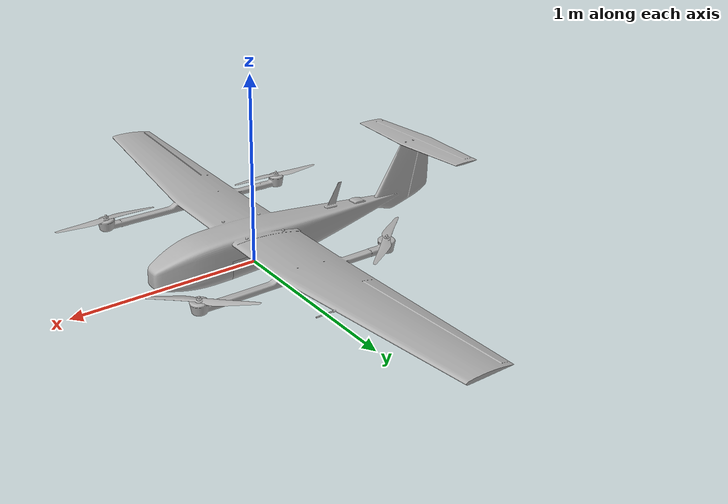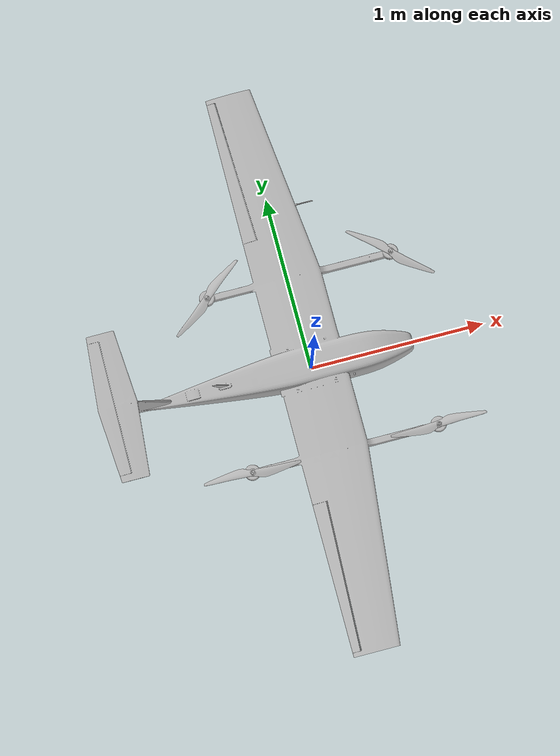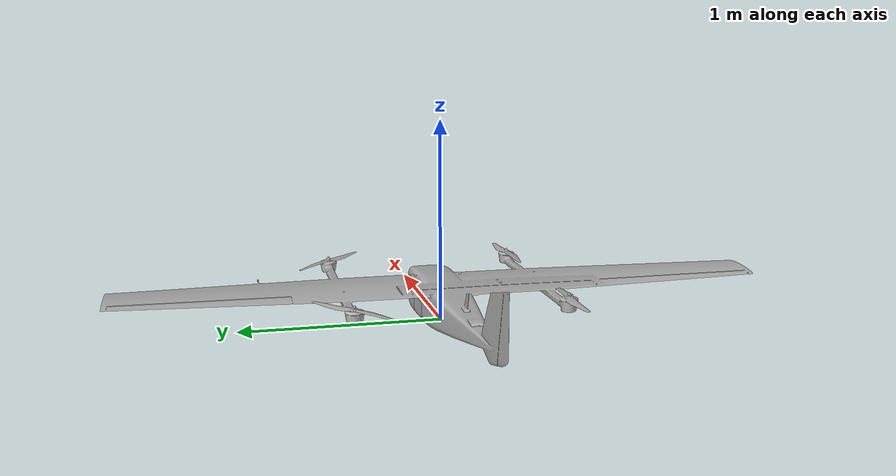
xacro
<?xml version="1.0" ?>
<robot name="vtol_dron" xmlns:xacro="http://www.ros.org/wiki/xacro">

  <!-- Include materials and simulation files -->
  <xacro:include filename="$(find vtol_dron_description)/urdf/materials.xacro" />
  <xacro:include filename="$(find vtol_dron_description)/urdf/vtol_dron.trans" />
  <xacro:include filename="$(find vtol_dron_description)/urdf/vtol_dron.gazebo" />

  <!-- ==================== BASE LINK ==================== -->
  <link name="base_link">
    <inertial>
      <!-- almost weightless -->
      <origin xyz="0 0 0" rpy="0 0 0"/>
      <mass value="0.0001"/>
      <inertia ixx="1e-6" iyy="1e-6" izz="1e-6" ixy="0" iyz="0" ixz="0"/>
    </inertial>
    <visual>
      <origin xyz="0 0 0" rpy="0 0 0"/>
      <geometry>
        <mesh filename="file://$(find vtol_dron_description)/meshes/base_link.stl" scale="0.001 0.001 0.001"/>
      </geometry>
      <material name="silver"/>
    </visual>
    <collision>
      <origin xyz="0 0 0" rpy="0 0 0"/>
      <geometry>
        <mesh filename="file://$(find vtol_dron_description)/meshes/base_link.stl" scale="0.001 0.001 0.001"/>
      </geometry>
    </collision>
  </link>

  <!-- ==================== MECHANISM ==================== -->
  <link name="mechanism__1_1">
    <inertial>
      <!-- negligible mass -->
      <origin xyz="0 0 0" rpy="0 0 0"/>
      <mass value="0.0001"/>
      <inertia ixx="1e-6" iyy="1e-6" izz="1e-6" ixy="0" iyz="0" ixz="0"/>
    </inertial>
    <visual>
      <origin xyz="0.014058 0.00682 -0.047465" rpy="0 0 0"/>
      <geometry>
        <mesh filename="file://$(find vtol_dron_description)/meshes/mechanism__1_1.stl" scale="0.001 0.001 0.001"/>
      </geometry>
      <material name="silver"/>
    </visual>
    <collision>
      <origin xyz="0.014058 0.00682 -0.047465" rpy="0 0 0"/>
      <geometry>
        <mesh filename="file://$(find vtol_dron_description)/meshes/mechanism__1_1.stl" scale="0.001 0.001 0.001"/>
      </geometry>
    </collision>
  </link>

  <!-- ==================== PROPELLER LINKS ==================== -->
  <!-- Each propeller has realistic mass (0.75 kg) and simple inertia -->

  <link name="rear_left_propeller_1">
    <inertial>
      <origin xyz="0 0 0" rpy="0 0 0"/>
      <mass value="0.75"/>
      <inertia ixx="0.001" iyy="0.001" izz="0.002" ixy="0" iyz="0" ixz="0"/>
    </inertial>
    <visual>
      <origin xyz="0.467618 -0.492756 -0.202098" rpy="0 0 0"/>
      <geometry>
        <mesh filename="file://$(find vtol_dron_description)/meshes/rear_left_propeller_1.stl" scale="0.001 0.001 0.001"/>
      </geometry>
      <material name="silver"/>
    </visual>
    <collision>
      <origin xyz="0.467618 -0.492756 -0.202098" rpy="0 0 0"/>
      <geometry>
        <mesh filename="file://$(find vtol_dron_description)/meshes/rear_left_propeller_1.stl" scale="0.001 0.001 0.001"/>
      </geometry>
    </collision>
  </link>

  <link name="rear_right_propeller_1">
    <inertial>
      <origin xyz="0 0 0" rpy="0 0 0"/>
      <mass value="0.75"/>
      <inertia ixx="0.001" iyy="0.001" izz="0.002" ixy="0" iyz="0" ixz="0"/>
    </inertial>
    <visual>
      <origin xyz="0.467618 0.507244 -0.202098" rpy="0 0 0"/>
      <geometry>
        <mesh filename="file://$(find vtol_dron_description)/meshes/rear_right_propeller_1.stl" scale="0.001 0.001 0.001"/>
      </geometry>
      <material name="silver"/>
    </visual>
    <collision>
      <origin xyz="0.467618 0.507244 -0.202098" rpy="0 0 0"/>
      <geometry>
        <mesh filename="file://$(find vtol_dron_description)/meshes/rear_right_propeller_1.stl" scale="0.001 0.001 0.001"/>
      </geometry>
    </collision>
  </link>

  <link name="front_left_propeller_1">
    <inertial>
      <origin xyz="0 0 0" rpy="0 0 0"/>
      <mass value="0.75"/>
      <inertia ixx="0.001" iyy="0.001" izz="0.002" ixy="0" iyz="0" ixz="0"/>
    </inertial>
    <visual>
      <origin xyz="-0.582382 -0.492756 -0.202098" rpy="0 0 0"/>
      <geometry>
        <mesh filename="file://$(find vtol_dron_description)/meshes/front_left_propeller_1.stl" scale="0.001 0.001 0.001"/>
      </geometry>
      <material name="silver"/>
    </visual>
    <collision>
      <origin xyz="-0.582382 -0.492756 -0.202098" rpy="0 0 0"/>
      <geometry>
        <mesh filename="file://$(find vtol_dron_description)/meshes/front_left_propeller_1.stl" scale="0.001 0.001 0.001"/>
      </geometry>
    </collision>
  </link>

  <link name="front_right_propeller_1">
    <inertial>
      <origin xyz="0 0 0" rpy="0 0 0"/>
      <mass value="0.75"/>
      <inertia ixx="0.001" iyy="0.001" izz="0.002" ixy="0" iyz="0" ixz="0"/>
    </inertial>
    <visual>
      <origin xyz="-0.582382 0.507244 -0.202098" rpy="0 0 0"/>
      <geometry>
        <mesh filename="file://$(find vtol_dron_description)/meshes/front_right_propeller_1.stl" scale="0.001 0.001 0.001"/>
      </geometry>
      <material name="silver"/>
    </visual>
    <collision>
      <origin xyz="-0.582382 0.507244 -0.202098" rpy="0 0 0"/>
      <geometry>
        <mesh filename="file://$(find vtol_dron_description)/meshes/front_right_propeller_1.stl" scale="0.001 0.001 0.001"/>
      </geometry>
    </collision>
  </link>

  <!-- ==================== JOINTS ==================== -->
  <joint name="Rigid_16" type="fixed">
    <origin xyz="-0.014058 -0.00682 0.047465" rpy="0 0 0"/>
    <parent link="base_link"/>
    <child link="mechanism__1_1"/>
  </joint>

  <joint name="Revolute_17" type="continuous">
    <origin xyz="-0.467618 0.492756 0.202098" rpy="0 0 0"/>
    <parent link="base_link"/>
    <child link="rear_left_propeller_1"/>
    <axis xyz="0 0 1"/>
  </joint>

  <joint name="Revolute_18" type="continuous">
    <origin xyz="-0.467618 -0.507244 0.202098" rpy="0 0 0"/>
    <parent link="base_link"/>
    <child link="rear_right_propeller_1"/>
    <axis xyz="0 0 1"/>
  </joint>

  <joint name="Revolute_19" type="continuous">
    <origin xyz="0.582382 0.492756 0.202098" rpy="0 0 0"/>
    <parent link="base_link"/>
    <child link="front_left_propeller_1"/>
    <axis xyz="0 0 1"/>
  </joint>

  <joint name="Revolute_20" type="continuous">
    <origin xyz="0.582382 -0.507244 0.202098" rpy="0 0 0"/>
    <parent link="base_link"/>
    <child link="front_right_propeller_1"/>
    <axis xyz="0 0 1"/>
  </joint>

</robot>

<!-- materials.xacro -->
<robot name="vtol_dron" xmlns:xacro="http://www.ros.org/wiki/xacro" >

<material name="silver">
  <color rgba="0.700 0.700 0.700 1.000"/>
</material>

</robot>

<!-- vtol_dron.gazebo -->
<robot name="vtol_dron" xmlns:xacro="http://www.ros.org/wiki/xacro" >

<xacro:property name="body_color" value="Gazebo/Silver" />

<gazebo>
  <plugin name="control" filename="libgazebo_ros_control.so"/>
</gazebo>
<gazebo reference="base_link">
  <material>${body_color}</material>
  <mu1>0.2</mu1>
  <mu2>0.2</mu2>
  <self_collide>true</self_collide>
  <gravity>true</gravity>
</gazebo>

<gazebo reference="mechanism__1_1">
  <material>${body_color}</material>
  <mu1>0.2</mu1>
  <mu2>0.2</mu2>
  <self_collide>true</self_collide>
</gazebo>

<gazebo reference="rear_left_propeller_1">
  <material>${body_color}</material>
  <mu1>0.2</mu1>
  <mu2>0.2</mu2>
  <self_collide>true</self_collide>
</gazebo>

<gazebo reference="rear_right_propeller_1">
  <material>${body_color}</material>
  <mu1>0.2</mu1>
  <mu2>0.2</mu2>
  <self_collide>true</self_collide>
</gazebo>

<gazebo reference="front_left_propeller_1">
  <material>${body_color}</material>
  <mu1>0.2</mu1>
  <mu2>0.2</mu2>
  <self_collide>true</self_collide>
</gazebo>

<gazebo reference="front_right_propeller_1">
  <material>${body_color}</material>
  <mu1>0.2</mu1>
  <mu2>0.2</mu2>
  <self_collide>true</self_collide>
</gazebo>

</robot>
